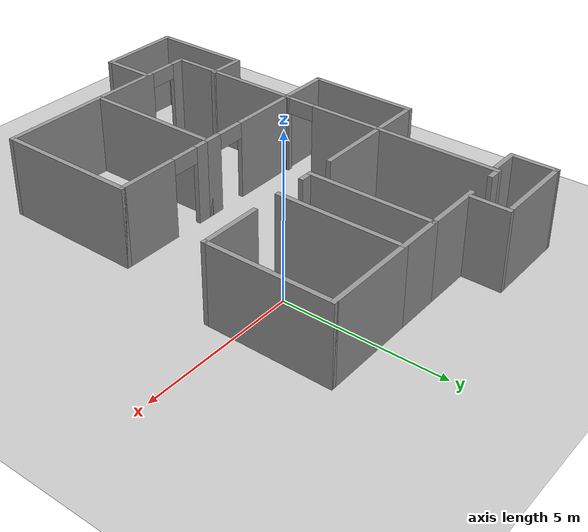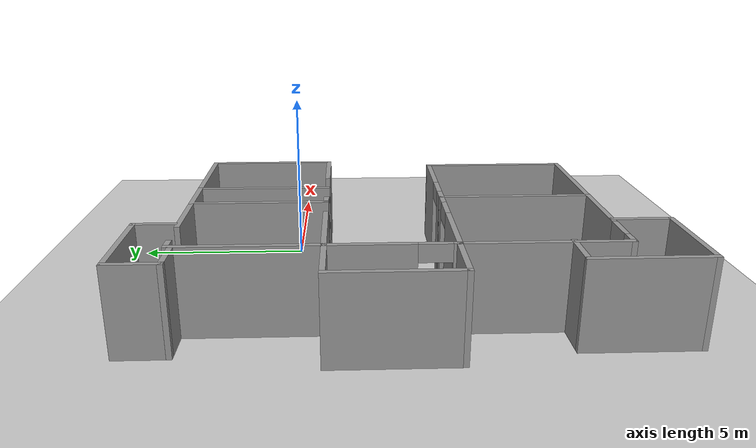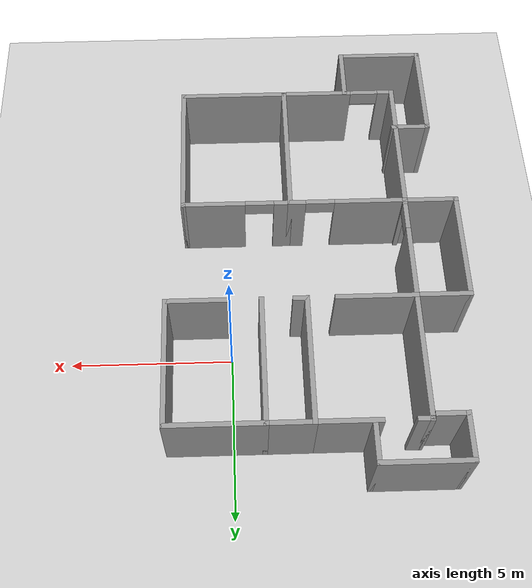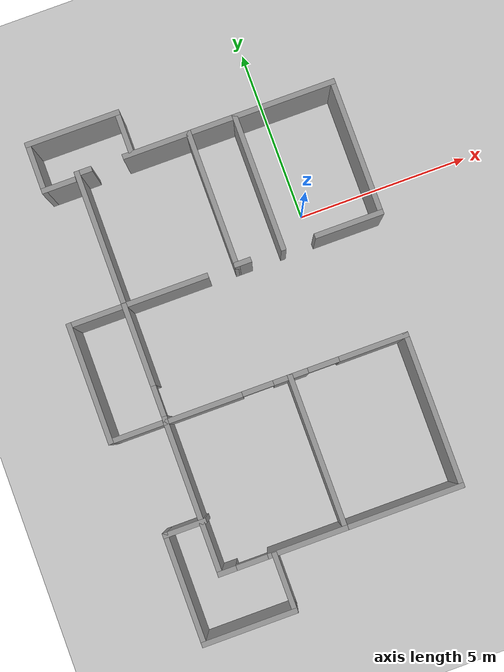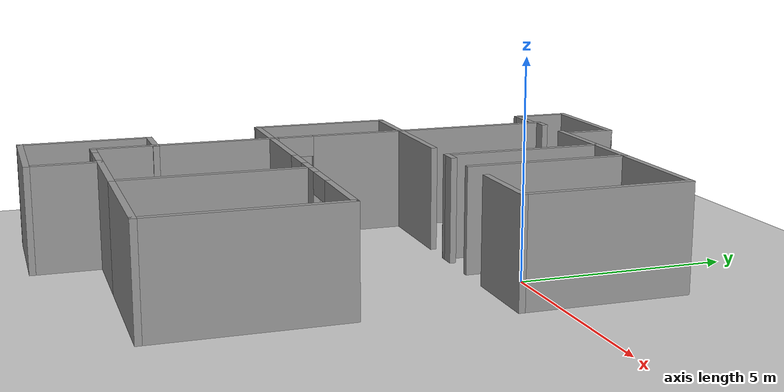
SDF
<sdf version="1.9">
 <world name="default">
  <light name="sun" type="directional">
   <pose>0 0 10 0 0 0</pose>
   <diffuse>0.800000012 0.800000012 0.800000012 1</diffuse>
   <specular>0.100000001 0.100000001 0.100000001 1</specular>
   <attenuation>
    <range>1000</range>
    <constant>0.90000000000000002</constant>
    <linear>0.01</linear>
    <quadratic>0.001</quadratic>
   </attenuation>
   <direction>-0.5 0.5 -1</direction>
   <spot><inner_angle>0</inner_angle><outer_angle>0</outer_angle><falloff>0</falloff></spot>
  </light>
  <model name="ground_plane">
   <static>true</static>
   <link name="link">
    <collision name="collision">
     <geometry><plane><normal>0 0 1</normal><size>100 100</size></plane></geometry>
     <surface><friction><ode><mu>100</mu><mu2>50</mu2></ode></friction></surface>
    </collision>
    <visual name="visual">
     <cast_shadows>false</cast_shadows>
     <geometry><plane><normal>0 0 1</normal><size>100 100</size></plane></geometry>
     <material>
      <script><uri>file://media/materials/scripts/gazebo.material</uri><name>Gazebo/Grey</name></script>
     </material>
    </visual>
   </link>
  </model>
  <gravity>0 0 -9.8000000000000007</gravity>
  <magnetic_field>6.0000000000000002e-06 2.3e-05 -4.1999999999999998e-05</magnetic_field>
  <atmosphere type="adiabatic"/>
  <physics name="default_physics" default="false" type="ode">
   <max_step_size>0.001</max_step_size>
   <real_time_factor>1</real_time_factor>
   <real_time_update_rate>1000</real_time_update_rate>
  </physics>
  <scene>
   <ambient>0.400000006 0.400000006 0.400000006 1</ambient>
   <background>0.699999988 0.699999988 0.699999988 1</background>
   <shadows>true</shadows>
  </scene>
  <spherical_coordinates>
   <surface_model>EARTH_WGS84</surface_model>
   <latitude_deg>0</latitude_deg>
   <longitude_deg>0</longitude_deg>
   <elevation>0</elevation>
   <heading_deg>0</heading_deg>
  </spherical_coordinates>
  <model name="cma_escritorio">
   <pose>-1.7968200000000001 1.02121 0 0 0 0</pose>
   <link name="Wall_11">
    <collision name="Wall_11_Collision">
     <geometry><box><size>2 0.14999999999999999 2.5</size></box></geometry>
     <pose>0 0 1.25 0 0 0</pose>
    </collision>
    <visual name="Wall_11_Visual">
     <pose>0 0 1.25 0 0 0</pose>
     <geometry><box><size>2 0.14999999999999999 2.5</size></box></geometry>
     <material>
      <script><uri>file://media/materials/scripts/gazebo.material</uri><name>Gazebo/Grey</name></script>
      <ambient>1 1 1 1</ambient>
     </material>
    </visual>
    <pose>-1.3999999999999999 1.9299999999999999 0 0 0 3.1415899999999999</pose>
   </link>
   <link name="Wall_2">
    <collision name="Wall_2_Collision">
     <geometry><box><size>4 0.14999999999999999 2.5</size></box></geometry>
     <pose>0 0 1.25 0 0 0</pose>
    </collision>
    <visual name="Wall_2_Visual">
     <pose>0 0 1.25 0 0 0</pose>
     <geometry><box><size>4 0.14999999999999999 2.5</size></box></geometry>
     <material>
      <script><uri>file://media/materials/scripts/gazebo.material</uri><name>Gazebo/Grey</name></script>
      <ambient>1 1 1 1</ambient>
     </material>
    </visual>
    <pose>0.875 0.0050000000000000001 0 0 0 1.5708</pose>
   </link>
   <link name="Wall_25">
    <collision name="Wall_25_Collision">
     <geometry><box><size>2.5 0.14999999999999999 2.5</size></box></geometry>
     <pose>0 0 1.25 0 0 0</pose>
    </collision>
    <visual name="Wall_25_Visual">
     <pose>0 0 1.25 0 0 0</pose>
     <geometry><box><size>2.5 0.14999999999999999 2.5</size></box></geometry>
     <material>
      <script><uri>file://media/materials/scripts/gazebo.material</uri><name>Gazebo/Grey</name></script>
      <ambient>1 1 1 1</ambient>
     </material>
    </visual>
    <pose>-2.5499999999999998 -1.9299999999999999 0 0 0 3.1415899999999999</pose>
   </link>
   <link name="Wall_26">
    <collision name="Wall_26_Collision">
     <geometry><box><size>4 0.14999999999999999 2.5</size></box></geometry>
     <pose>0 0 1.25 0 0 0</pose>
    </collision>
    <visual name="Wall_26_Visual">
     <pose>0 0 1.25 0 0 0</pose>
     <geometry><box><size>4 0.14999999999999999 2.5</size></box></geometry>
     <material>
      <script><uri>file://media/materials/scripts/gazebo.material</uri><name>Gazebo/Grey</name></script>
      <ambient>1 1 1 1</ambient>
     </material>
    </visual>
    <pose>-3.7250000000000001 -0.0050000000000000001 0 0 0 1.5708</pose>
   </link>
   <link name="Wall_27">
    <collision name="Wall_27_Collision">
     <geometry><box><size>0.5 0.14999999999999999 2.5</size></box></geometry>
     <pose>0 0 1.25 0 0 0</pose>
    </collision>
    <visual name="Wall_27_Visual">
     <pose>0 0 1.25 0 0 0</pose>
     <geometry><box><size>0.5 0.14999999999999999 2.5</size></box></geometry>
     <material>
      <script><uri>file://media/materials/scripts/gazebo.material</uri><name>Gazebo/Grey</name></script>
      <ambient>1 1 1 1</ambient>
     </material>
    </visual>
    <pose>-3.5499999999999998 1.9199999999999999 0 0 0 0</pose>
   </link>
   <link name="Wall_3">
    <collision name="Wall_3_Collision">
     <geometry><box><size>3 0.14999999999999999 2.5</size></box></geometry>
     <pose>0 0 1.25 0 0 0</pose>
    </collision>
    <visual name="Wall_3_Visual">
     <pose>0 0 1.25 0 0 0</pose>
     <geometry><box><size>3 0.14999999999999999 2.5</size></box></geometry>
     <material>
      <script><uri>file://media/materials/scripts/gazebo.material</uri><name>Gazebo/Grey</name></script>
      <ambient>1 1 1 1</ambient>
     </material>
    </visual>
    <pose>2.2999999999999998 1.9299999999999999 0 0 0 0</pose>
   </link>
   <link name="Wall_4">
    <collision name="Wall_4_Collision">
     <geometry><box><size>4 0.14999999999999999 2.5</size></box></geometry>
     <pose>0 0 1.25 0 0 0</pose>
    </collision>
    <visual name="Wall_4_Visual">
     <pose>0 0 1.25 0 0 0</pose>
     <geometry><box><size>4 0.14999999999999999 2.5</size></box></geometry>
     <material>
      <script><uri>file://media/materials/scripts/gazebo.material</uri><name>Gazebo/Grey</name></script>
      <ambient>1 1 1 1</ambient>
     </material>
    </visual>
    <pose>3.7250000000000001 0.0050000000000000001 0 0 0 -1.5708</pose>
   </link>
   <link name="Wall_5">
    <collision name="Wall_5_Collision">
     <geometry><box><size>2 0.14999999999999999 2.5</size></box></geometry>
     <pose>0 0 1.25 0 0 0</pose>
    </collision>
    <visual name="Wall_5_Visual">
     <pose>0 0 1.25 0 0 0</pose>
     <geometry><box><size>2 0.14999999999999999 2.5</size></box></geometry>
     <material>
      <script><uri>file://media/materials/scripts/gazebo.material</uri><name>Gazebo/Grey</name></script>
      <ambient>1 1 1 1</ambient>
     </material>
    </visual>
    <pose>2.7999999999999998 -1.9199999999999999 0 0 0 3.1415899999999999</pose>
   </link>
   <link name="Wall_7">
    <collision name="Wall_7_Collision">
     <geometry><box><size>1.5 0.14999999999999999 2.5</size></box></geometry>
     <pose>0 0 1.25 0 0 0</pose>
    </collision>
    <visual name="Wall_7_Visual">
     <pose>0 0 1.25 0 0 0</pose>
     <geometry><box><size>1.5 0.14999999999999999 2.5</size></box></geometry>
     <material>
      <script><uri>file://media/materials/scripts/gazebo.material</uri><name>Gazebo/Grey</name></script>
      <ambient>1 1 1 1</ambient>
     </material>
    </visual>
    <pose>0.20000000000000001 1.9299999999999999 0 0 0 3.1415899999999999</pose>
   </link>
   <link name="Wall_8">
    <collision name="Wall_8_Collision">
     <geometry><box><size>4 0.14999999999999999 2.5</size></box></geometry>
     <pose>0 0 1.25 0 0 0</pose>
    </collision>
    <visual name="Wall_8_Visual">
     <pose>0 0 1.25 0 0 0</pose>
     <geometry><box><size>4 0.14999999999999999 2.5</size></box></geometry>
     <material>
      <script><uri>file://media/materials/scripts/gazebo.material</uri><name>Gazebo/Grey</name></script>
      <ambient>1 1 1 1</ambient>
     </material>
    </visual>
    <pose>-0.47499999999999998 0.0050000000000000001 0 0 0 -1.5708</pose>
   </link>
   <link name="Wall_9">
    <collision name="Wall_9_Collision">
     <geometry><box><size>0.5 0.14999999999999999 2.5</size></box></geometry>
     <pose>0 0 1.25 0 0 0</pose>
    </collision>
    <visual name="Wall_9_Visual">
     <pose>0 0 1.25 0 0 0</pose>
     <geometry><box><size>0.5 0.14999999999999999 2.5</size></box></geometry>
     <material>
      <script><uri>file://media/materials/scripts/gazebo.material</uri><name>Gazebo/Grey</name></script>
      <ambient>1 1 1 1</ambient>
     </material>
    </visual>
    <pose>-0.29999999999999999 -1.9199999999999999 0 0 0 0</pose>
   </link>
   <static>true</static>
  </model>
  <model name="cma_banheiro">
   <pose>-5.2292800000000002 3.4870999999999999 0 0 0 0</pose>
   <link name="Wall_0">
    <collision name="Wall_0_Collision">
     <geometry><box><size>1 0.14999999999999999 2.5</size></box></geometry>
     <pose>0 0 1.25 0 0 0</pose>
    </collision>
    <visual name="Wall_0_Visual">
     <pose>0 0 1.25 0 0 0</pose>
     <geometry><box><size>1 0.14999999999999999 2.5</size></box></geometry>
     <material>
      <script><uri>file://media/materials/scripts/gazebo.material</uri><name>Gazebo/Grey</name></script>
      <ambient>1 1 1 1</ambient>
     </material>
    </visual>
    <pose>-0.875 -0.67500000000000004 0 0 0 3.1415899999999999</pose>
   </link>
   <link name="Wall_1">
    <collision name="Wall_1_Collision">
     <geometry><box><size>1.5 0.14999999999999999 2.5</size></box></geometry>
     <pose>0 0 1.25 0 0 0</pose>
    </collision>
    <visual name="Wall_1_Visual">
     <pose>0 0 1.25 0 0 0</pose>
     <geometry><box><size>1.5 0.14999999999999999 2.5</size></box></geometry>
     <material>
      <script><uri>file://media/materials/scripts/gazebo.material</uri><name>Gazebo/Grey</name></script>
      <ambient>1 1 1 1</ambient>
     </material>
    </visual>
    <pose>-1.3 0 0 0 0 1.5708</pose>
   </link>
   <link name="Wall_2">
    <collision name="Wall_2_Collision">
     <geometry><box><size>2.75 0.14999999999999999 2.5</size></box></geometry>
     <pose>0 0 1.25 0 0 0</pose>
    </collision>
    <visual name="Wall_2_Visual">
     <pose>0 0 1.25 0 0 0</pose>
     <geometry><box><size>2.75 0.14999999999999999 2.5</size></box></geometry>
     <material>
      <script><uri>file://media/materials/scripts/gazebo.material</uri><name>Gazebo/Grey</name></script>
      <ambient>1 1 1 1</ambient>
     </material>
    </visual>
    <pose>0 0.67500000000000004 0 0 0 0</pose>
   </link>
   <link name="Wall_4">
    <collision name="Wall_4_Collision">
     <geometry><box><size>1.25 0.14999999999999999 2.5</size></box></geometry>
     <pose>0 0 1.25 0 0 0</pose>
    </collision>
    <visual name="Wall_4_Visual">
     <pose>0 0 1.25 0 0 0</pose>
     <geometry><box><size>1.25 0.14999999999999999 2.5</size></box></geometry>
     <material>
      <script><uri>file://media/materials/scripts/gazebo.material</uri><name>Gazebo/Grey</name></script>
      <ambient>1 1 1 1</ambient>
     </material>
    </visual>
    <pose>1.3 0.125 0 0 0 -1.5708</pose>
   </link>
   <static>true</static>
  </model>
  <model name="cma_varanda1">
   <pose>-6.3251799999999996 -2.5931299999999999 0 0 0 0</pose>
   <link name="Wall_0">
    <pose>0.80000000000000004 0 0 0 0 -1.5708</pose>
    <visual name="Wall_0_Visual_0">
     <pose>-0.55249999999999999 0 1.25 0 0 0</pose>
     <geometry><box><size>2.395 0.14999999999999999 2.5</size></box></geometry>
     <material>
      <script><uri>file://media/materials/scripts/gazebo.material</uri><name>Gazebo/Grey</name></script>
      <ambient>1 1 1 1</ambient>
     </material>
    </visual>
    <collision name="Wall_0_Collision_0">
     <geometry><box><size>2.395 0.14999999999999999 2.5</size></box></geometry>
     <pose>-0.55249999999999999 0 1.25 0 0 0</pose>
    </collision>
    <visual name="Wall_0_Visual_1">
     <pose>1.6375 0 1.25 0 0 0</pose>
     <geometry><box><size>0.22500000000000001 0.14999999999999999 2.5</size></box></geometry>
     <material>
      <script><uri>file://media/materials/scripts/gazebo.material</uri><name>Gazebo/Grey</name></script>
      <ambient>1 1 1 1</ambient>
     </material>
    </visual>
    <collision name="Wall_0_Collision_1">
     <geometry><box><size>0.22500000000000001 0.14999999999999999 2.5</size></box></geometry>
     <pose>1.6375 0 1.25 0 0 0</pose>
    </collision>
    <visual name="Wall_0_Visual_2">
     <pose>1.085 0 2.25 0 0 0</pose>
     <geometry><box><size>0.88 0.14999999999999999 0.5</size></box></geometry>
     <material>
      <script><uri>file://media/materials/scripts/gazebo.material</uri><name>Gazebo/Grey</name></script>
      <ambient>1 1 1 1</ambient>
     </material>
    </visual>
    <collision name="Wall_0_Collision_2">
     <geometry><box><size>0.88 0.14999999999999999 0.5</size></box></geometry>
     <pose>1.085 0 2.25 0 0 0</pose>
    </collision>
   </link>
   <link name="Wall_1">
    <collision name="Wall_1_Collision">
     <geometry><box><size>1.75 0.14999999999999999 2.5</size></box></geometry>
     <pose>0 0 1.25 0 0 0</pose>
    </collision>
    <visual name="Wall_1_Visual">
     <pose>0 0 1.25 0 0 0</pose>
     <geometry><box><size>1.75 0.14999999999999999 2.5</size></box></geometry>
     <material>
      <script><uri>file://media/materials/scripts/gazebo.material</uri><name>Gazebo/Grey</name></script>
      <ambient>1 1 1 1</ambient>
     </material>
    </visual>
    <pose>0 -1.675 0 0 0 3.1415899999999999</pose>
   </link>
   <link name="Wall_2">
    <collision name="Wall_2_Collision">
     <geometry><box><size>3.5 0.14999999999999999 2.5</size></box></geometry>
     <pose>0 0 1.25 0 0 0</pose>
    </collision>
    <visual name="Wall_2_Visual">
     <pose>0 0 1.25 0 0 0</pose>
     <geometry><box><size>3.5 0.14999999999999999 2.5</size></box></geometry>
     <material>
      <script><uri>file://media/materials/scripts/gazebo.material</uri><name>Gazebo/Grey</name></script>
      <ambient>1 1 1 1</ambient>
     </material>
    </visual>
    <pose>-0.80000000000000004 0 0 0 0 1.5708</pose>
   </link>
   <link name="Wall_3">
    <collision name="Wall_3_Collision">
     <geometry><box><size>1.75 0.14999999999999999 2.5</size></box></geometry>
     <pose>0 0 1.25 0 0 0</pose>
    </collision>
    <visual name="Wall_3_Visual">
     <pose>0 0 1.25 0 0 0</pose>
     <geometry><box><size>1.75 0.14999999999999999 2.5</size></box></geometry>
     <material>
      <script><uri>file://media/materials/scripts/gazebo.material</uri><name>Gazebo/Grey</name></script>
      <ambient>1 1 1 1</ambient>
     </material>
    </visual>
    <pose>0 1.675 0 0 0 0</pose>
   </link>
   <static>true</static>
  </model>
  <model name="cma_quartos">
   <pose>-2.58169 -7.2645600000000004 0 0 0 0</pose>
   <link name="Wall_0">
    <collision name="Wall_0_Collision">
     <geometry><box><size>4.5 0.14999999999999999 2.5</size></box></geometry>
     <pose>0 0 1.25 0 0 0</pose>
    </collision>
    <visual name="Wall_0_Visual">
     <pose>0 0 1.25 0 0 0</pose>
     <geometry><box><size>4.5 0.14999999999999999 2.5</size></box></geometry>
     <material>
      <script><uri>file://media/materials/scripts/gazebo.material</uri><name>Gazebo/Grey</name></script>
      <ambient>1 1 1 1</ambient>
     </material>
    </visual>
    <pose>0.64500000000000002 0.81000000000000005 0 0 0 -1.5708</pose>
   </link>
   <link name="Wall_1">
    <pose>-1.155 -1.365 0 0 0 3.1415899999999999</pose>
    <visual name="Wall_1_Visual_0">
     <pose>-0.72250000000000003 0 1.25 0 0 0</pose>
     <geometry><box><size>2.3050000000000002 0.14999999999999999 2.5</size></box></geometry>
     <material>
      <script><uri>file://media/materials/scripts/gazebo.material</uri><name>Gazebo/Grey</name></script>
      <ambient>1 1 1 1</ambient>
     </material>
    </visual>
    <collision name="Wall_1_Collision_0">
     <geometry><box><size>2.3050000000000002 0.14999999999999999 2.5</size></box></geometry>
     <pose>-0.72250000000000003 0 1.25 0 0 0</pose>
    </collision>
    <visual name="Wall_1_Visual_1">
     <pose>1.6025 0 1.25 0 0 0</pose>
     <geometry><box><size>0.54500000000000004 0.14999999999999999 2.5</size></box></geometry>
     <material>
      <script><uri>file://media/materials/scripts/gazebo.material</uri><name>Gazebo/Grey</name></script>
      <ambient>1 1 1 1</ambient>
     </material>
    </visual>
    <collision name="Wall_1_Collision_1">
     <geometry><box><size>0.54500000000000004 0.14999999999999999 2.5</size></box></geometry>
     <pose>1.6025 0 1.25 0 0 0</pose>
    </collision>
    <visual name="Wall_1_Visual_2">
     <pose>0.88 0 2.25 0 0 0</pose>
     <geometry><box><size>0.90000000000000002 0.14999999999999999 0.5</size></box></geometry>
     <material>
      <script><uri>file://media/materials/scripts/gazebo.material</uri><name>Gazebo/Grey</name></script>
      <ambient>1 1 1 1</ambient>
     </material>
    </visual>
    <collision name="Wall_1_Collision_2">
     <geometry><box><size>0.90000000000000002 0.14999999999999999 0.5</size></box></geometry>
     <pose>0.88 0 2.25 0 0 0</pose>
    </collision>
   </link>
   <link name="Wall_10">
    <collision name="Wall_10_Collision">
     <geometry><box><size>1.75 0.14999999999999999 2.5</size></box></geometry>
     <pose>0 0 1.25 0 0 0</pose>
    </collision>
    <visual name="Wall_10_Visual">
     <pose>0 0 1.25 0 0 0</pose>
     <geometry><box><size>1.75 0.14999999999999999 2.5</size></box></geometry>
     <material>
      <script><uri>file://media/materials/scripts/gazebo.material</uri><name>Gazebo/Grey</name></script>
      <ambient>1 1 1 1</ambient>
     </material>
    </visual>
    <pose>-1.395 -2.1850000000000001 0 0 0 -1.5708</pose>
   </link>
   <link name="Wall_11">
    <collision name="Wall_11_Collision">
     <geometry><box><size>2.75 0.14999999999999999 2.5</size></box></geometry>
     <pose>0 0 1.25 0 0 0</pose>
    </collision>
    <visual name="Wall_11_Visual">
     <pose>0 0 1.25 0 0 0</pose>
     <geometry><box><size>2.75 0.14999999999999999 2.5</size></box></geometry>
     <material>
      <script><uri>file://media/materials/scripts/gazebo.material</uri><name>Gazebo/Grey</name></script>
      <ambient>1 1 1 1</ambient>
     </material>
    </visual>
    <pose>-2.6949999999999998 -2.9849999999999999 0 0 0 3.1415899999999999</pose>
   </link>
   <link name="Wall_12">
    <collision name="Wall_12_Collision">
     <geometry><box><size>3.25 0.14999999999999999 2.5</size></box></geometry>
     <pose>0 0 1.25 0 0 0</pose>
    </collision>
    <visual name="Wall_12_Visual">
     <pose>0 0 1.25 0 0 0</pose>
     <geometry><box><size>3.25 0.14999999999999999 2.5</size></box></geometry>
     <material>
      <script><uri>file://media/materials/scripts/gazebo.material</uri><name>Gazebo/Grey</name></script>
      <ambient>1 1 1 1</ambient>
     </material>
    </visual>
    <pose>-3.9950000000000001 -1.4350000000000001 0 0 0 1.5708</pose>
   </link>
   <link name="Wall_13">
    <collision name="Wall_13_Collision">
     <geometry><box><size>1.25 0.14999999999999999 2.5</size></box></geometry>
     <pose>0 0 1.25 0 0 0</pose>
    </collision>
    <visual name="Wall_13_Visual">
     <pose>0 0 1.25 0 0 0</pose>
     <geometry><box><size>1.25 0.14999999999999999 2.5</size></box></geometry>
     <material>
      <script><uri>file://media/materials/scripts/gazebo.material</uri><name>Gazebo/Grey</name></script>
      <ambient>1 1 1 1</ambient>
     </material>
    </visual>
    <pose>-3.4449999999999998 0.115 0 0 0 0</pose>
   </link>
   <link name="Wall_2">
    <collision name="Wall_2_Collision">
     <geometry><box><size>4.5 0.14999999999999999 2.5</size></box></geometry>
     <pose>0 0 1.25 0 0 0</pose>
    </collision>
    <visual name="Wall_2_Visual">
     <pose>0 0 1.25 0 0 0</pose>
     <geometry><box><size>4.5 0.14999999999999999 2.5</size></box></geometry>
     <material>
      <script><uri>file://media/materials/scripts/gazebo.material</uri><name>Gazebo/Grey</name></script>
      <ambient>1 1 1 1</ambient>
     </material>
    </visual>
    <pose>-2.9550000000000001 0.81000000000000005 0 0 0 1.5708</pose>
   </link>
   <link name="Wall_3">
    <pose>-1.155 2.9849999999999999 0 0 0 0</pose>
    <visual name="Wall_3_Visual_0">
     <pose>-0.73250000000000004 0 1.25 0 0 0</pose>
     <geometry><box><size>2.2850000000000001 0.14999999999999999 2.5</size></box></geometry>
     <material>
      <script><uri>file://media/materials/scripts/gazebo.material</uri><name>Gazebo/Grey</name></script>
      <ambient>1 1 1 1</ambient>
     </material>
    </visual>
    <collision name="Wall_3_Collision_0">
     <geometry><box><size>2.2850000000000001 0.14999999999999999 2.5</size></box></geometry>
     <pose>-0.73250000000000004 0 1.25 0 0 0</pose>
    </collision>
    <visual name="Wall_3_Visual_1">
     <pose>1.5925 0 1.25 0 0 0</pose>
     <geometry><box><size>0.56499999999999995 0.14999999999999999 2.5</size></box></geometry>
     <material>
      <script><uri>file://media/materials/scripts/gazebo.material</uri><name>Gazebo/Grey</name></script>
      <ambient>1 1 1 1</ambient>
     </material>
    </visual>
    <collision name="Wall_3_Collision_1">
     <geometry><box><size>0.56499999999999995 0.14999999999999999 2.5</size></box></geometry>
     <pose>1.5925 0 1.25 0 0 0</pose>
    </collision>
    <visual name="Wall_3_Visual_2">
     <pose>0.85999999999999999 0 2.25 0 0 0</pose>
     <geometry><box><size>0.90000000000000002 0.14999999999999999 0.5</size></box></geometry>
     <material>
      <script><uri>file://media/materials/scripts/gazebo.material</uri><name>Gazebo/Grey</name></script>
      <ambient>1 1 1 1</ambient>
     </material>
    </visual>
    <collision name="Wall_3_Collision_2">
     <geometry><box><size>0.90000000000000002 0.14999999999999999 0.5</size></box></geometry>
     <pose>0.85999999999999999 0 2.25 0 0 0</pose>
    </collision>
   </link>
   <link name="Wall_6">
    <pose>2.3199999999999998 2.9849999999999999 0 0 0 0</pose>
    <visual name="Wall_6_Visual_0">
     <pose>-1.4575 0 1.25 0 0 0</pose>
     <geometry><box><size>0.58499999999999996 0.14999999999999999 2.5</size></box></geometry>
     <material>
      <script><uri>file://media/materials/scripts/gazebo.material</uri><name>Gazebo/Grey</name></script>
      <ambient>1 1 1 1</ambient>
     </material>
    </visual>
    <collision name="Wall_6_Collision_0">
     <geometry><box><size>0.58499999999999996 0.14999999999999999 2.5</size></box></geometry>
     <pose>-1.4575 0 1.25 0 0 0</pose>
    </collision>
    <visual name="Wall_6_Visual_1">
     <pose>0.74250000000000005 0 1.25 0 0 0</pose>
     <geometry><box><size>2.0150000000000001 0.14999999999999999 2.5</size></box></geometry>
     <material>
      <script><uri>file://media/materials/scripts/gazebo.material</uri><name>Gazebo/Grey</name></script>
      <ambient>1 1 1 1</ambient>
     </material>
    </visual>
    <collision name="Wall_6_Collision_1">
     <geometry><box><size>2.0150000000000001 0.14999999999999999 2.5</size></box></geometry>
     <pose>0.74250000000000005 0 1.25 0 0 0</pose>
    </collision>
    <visual name="Wall_6_Visual_2">
     <pose>-0.71499999999999997 0 2.25 0 0 0</pose>
     <geometry><box><size>0.90000000000000002 0.14999999999999999 0.5</size></box></geometry>
     <material>
      <script><uri>file://media/materials/scripts/gazebo.material</uri><name>Gazebo/Grey</name></script>
      <ambient>1 1 1 1</ambient>
     </material>
    </visual>
    <collision name="Wall_6_Collision_2">
     <geometry><box><size>0.90000000000000002 0.14999999999999999 0.5</size></box></geometry>
     <pose>-0.71499999999999997 0 2.25 0 0 0</pose>
    </collision>
   </link>
   <link name="Wall_7">
    <collision name="Wall_7_Collision">
     <geometry><box><size>4.5 0.14999999999999999 2.5</size></box></geometry>
     <pose>0 0 1.25 0 0 0</pose>
    </collision>
    <visual name="Wall_7_Visual">
     <pose>0 0 1.25 0 0 0</pose>
     <geometry><box><size>4.5 0.14999999999999999 2.5</size></box></geometry>
     <material>
      <script><uri>file://media/materials/scripts/gazebo.material</uri><name>Gazebo/Grey</name></script>
      <ambient>1 1 1 1</ambient>
     </material>
    </visual>
    <pose>3.9950000000000001 0.81000000000000005 0 0 0 -1.5708</pose>
   </link>
   <link name="Wall_8">
    <collision name="Wall_8_Collision">
     <geometry><box><size>3.5 0.14999999999999999 2.5</size></box></geometry>
     <pose>0 0 1.25 0 0 0</pose>
    </collision>
    <visual name="Wall_8_Visual">
     <pose>0 0 1.25 0 0 0</pose>
     <geometry><box><size>3.5 0.14999999999999999 2.5</size></box></geometry>
     <material>
      <script><uri>file://media/materials/scripts/gazebo.material</uri><name>Gazebo/Grey</name></script>
      <ambient>1 1 1 1</ambient>
     </material>
    </visual>
    <pose>2.3199999999999998 -1.365 0 0 0 3.1415899999999999</pose>
   </link>
   <static>true</static>
  </model>
 </world>
</sdf>
